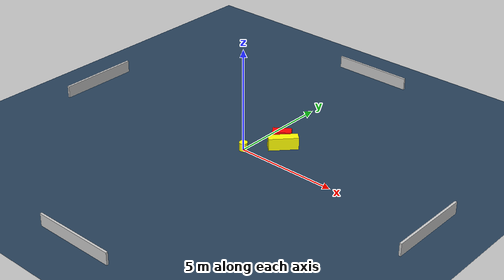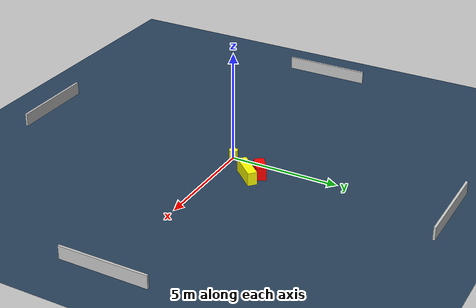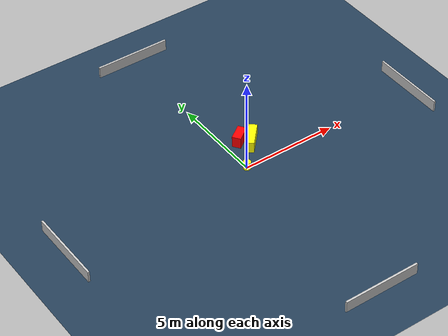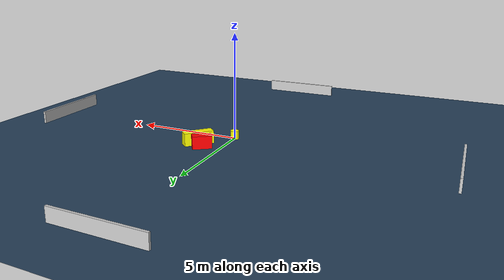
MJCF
<?xml version="1.0" ?>
<mujoco model="generated_environment">
  <option timestep="0.01" integrator="RK4" cone="elliptic"/>
  <default>
    <geom density="1"/>
  </default>
  <asset>
    <texture builtin="gradient" height="3072" name="skybox" rgb1="0.3 0.5 0.7" rgb2="0 0 0" type="skybox" width="512"/>
    <texture builtin="checker" height="300" name="groundplane" rgb1="0.2 0.3 0.4" rgb2="0.1 0.2 0.3" type="2d" width="300"/>
    <material name="groundplane" reflectance="0.2" texrepeat="5 5" texture="groundplane"/>
  </asset>
  <worldbody>
    <light dir="0 0 -1" directional="true" pos="0 0 1.5"/>
    <geom condim="3" friction="0.5 0.005 0.001" material="groundplane" name="floor" pos="0 0 0" size="0 0 0.05" type="plane"/>
    <body name="walls">
      <geom name="wall_1" condim="4" pos="-10.0 0.0 0.3" rgba="0.800000011920929 0.800000011920929 0.800000011920929 1.0" size="0.05 2.0 0.3" type="box"/>
      <geom name="wall_2" condim="4" pos="10.0 0.0 0.3" rgba="0.800000011920929 0.800000011920929 0.800000011920929 1.0" size="0.05 2.0 0.3" type="box"/>
      <geom name="wall_3" condim="4" pos="0.0 -10.0 0.3" rgba="0.800000011920929 0.800000011920929 0.800000011920929 1.0" size="2.0 0.05 0.3" type="box"/>
      <geom name="wall_4" condim="4" pos="0.0 10.0 0.3" rgba="0.800000011920929 0.800000011920929 0.800000011920929 1.0" size="2.0 0.05 0.3" type="box"/>
    </body>
    <body name="robot">
      <joint name="joint_x" type="slide" pos="0 0 0" axis="1 0 0"/>
      <joint name="joint_y" type="slide" pos="0 0 0" axis="0 1 0"/>
      <geom name="robot" type="cylinder" pos="0.0 0.0 0.2" size="0.2 0.2 0.0" mass="5.0" friction="1.0 0.005 0.0001" condim="4" rgba="1.0 1.0 0.0 1.0"/>
    </body>
    <body name="obstacle_1_movable">
      <geom name="obstacle_1_movable" condim="4" pos="1.2377828849318084 1.347786566877935 0.3" euler="0 0 227.49366224736525" friction="0.0 0.005 0.001" rgba="1.0 1.0 0.0 1.0" size="0.70248997935651 0.21263394329474536 0.3" type="box" mass="0.1"/>
      <joint type="free"/>
    </body>
    <body name="obstacle_2_static">
      <geom name="obstacle_2_static" condim="4" pos="0.818353019573622 1.7608340204885162 0.3" euler="0 0 125.11736732842908" friction="0.0 0.005 0.001" rgba="1.0 0.0 0.0 1.0" size="0.2280069954322097 0.44534818974026646 0.3" type="box"/>
    </body>
  </worldbody>
  <actuator>
    <motor name="actuator_x" joint="joint_x" gear="1" ctrlrange="-1 1"/>
    <motor name="actuator_y" joint="joint_y" gear="1" ctrlrange="-1 1"/>
  </actuator>
</mujoco>
